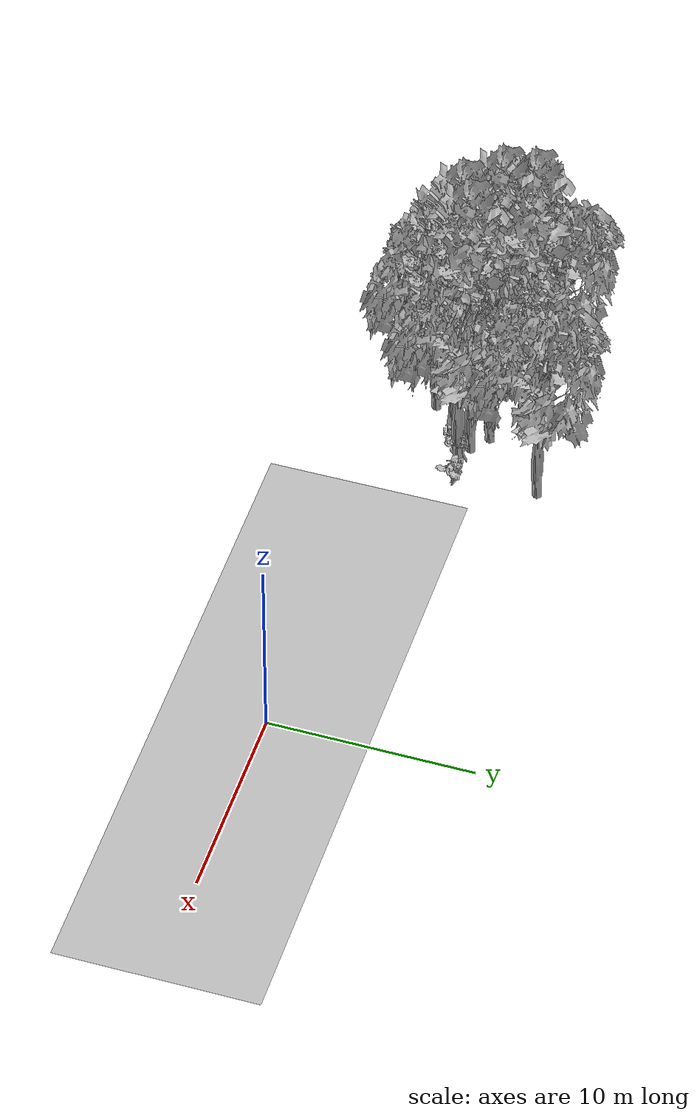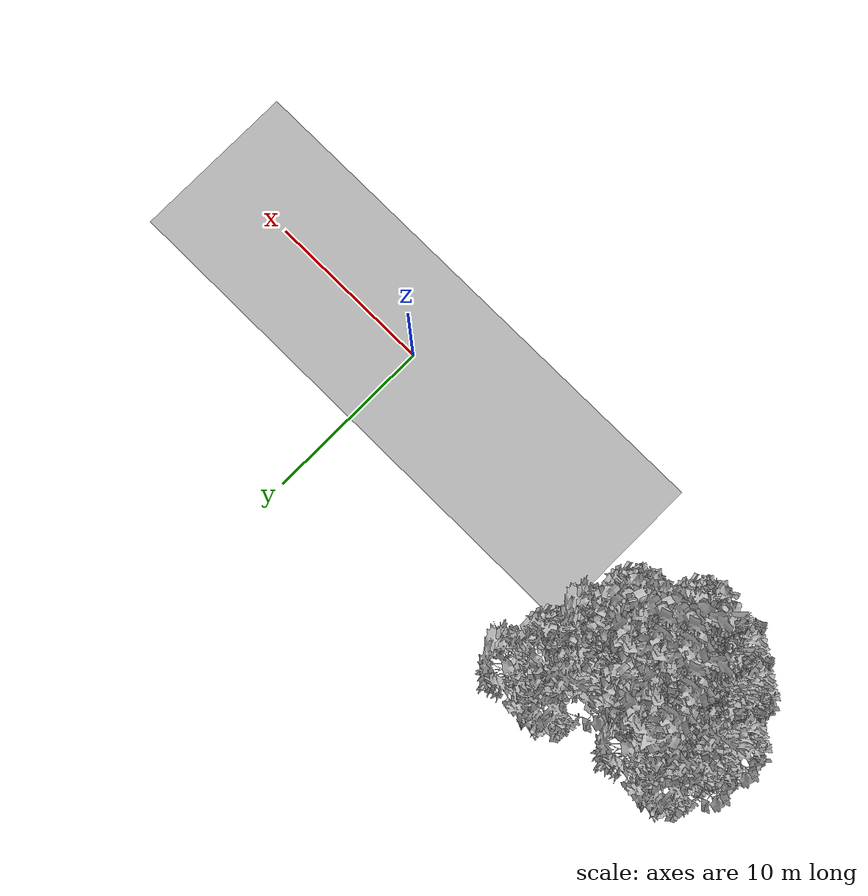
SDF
<sdf version="1.7">
 <world name="default">
  <model name="ground_plane">
   <static>1</static>
   <link name="link">
    <collision name="collision">
     <geometry><plane><normal>0 0 1</normal><size>100 100</size></plane></geometry>
     <surface><contact><ode><min_depth>0.01</min_depth><max_vel>0</max_vel></ode></contact></surface>
    </collision>
    <visual name="grass">
     <cast_shadows>0</cast_shadows>
     <geometry>
      <mesh>
       <scale>0.5814285714285714 0.18142857142857144 0.1</scale>
       <uri>file://grass_plane/meshes/grass_plane.dae</uri>
      </mesh>
     </geometry>
    </visual>
   </link>
  </model>
  <model name="Tree 11">
   <static>1</static>
   <pose>-23.143867781867687 2.5323528704578564 0 1.57079 -0 0</pose>
   <link name="link">
    <collision name="collision">
     <geometry><mesh><scale>3.5 5 3.5</scale><uri>model://tree_2/meshes/tree_2.obj</uri></mesh></geometry>
    </collision>
    <visual name="visual">
     <geometry><mesh><scale>3.5 5 3.5</scale><uri>model://tree_2/meshes/tree_2.obj</uri></mesh></geometry>
    </visual>
   </link>
  </model>
  <model name="Tree 22">
   <static>1</static>
   <pose>-21.677403938993216 1.5167767295512533 0 1.57079 -0 0</pose>
   <link name="link">
    <collision name="collision">
     <geometry><mesh><scale>3.5 5 3.5</scale><uri>model://tree_2/meshes/tree_2.obj</uri></mesh></geometry>
    </collision>
    <visual name="visual">
     <geometry><mesh><scale>3.5 5 3.5</scale><uri>model://tree_2/meshes/tree_2.obj</uri></mesh></geometry>
    </visual>
   </link>
  </model>
  <model name="Tree 31">
   <static>1</static>
   <pose>-19.441192703451993 3.903946145086696 0 1.57079 -0 0</pose>
   <link name="link">
    <collision name="collision">
     <geometry><mesh><scale>3.5 5 3.5</scale><uri>model://tree_2/meshes/tree_2.obj</uri></mesh></geometry>
    </collision>
    <visual name="visual">
     <geometry><mesh><scale>3.5 5 3.5</scale><uri>model://tree_2/meshes/tree_2.obj</uri></mesh></geometry>
    </visual>
   </link>
  </model>
  <model name="Tree 50">
   <static>1</static>
   <pose>-20.359017164193222 2.7420125081877593 0 1.57079 -0 0</pose>
   <link name="link">
    <collision name="collision">
     <geometry><mesh><scale>3.5 5 3.5</scale><uri>model://tree_9/meshes/tree_9.obj</uri></mesh></geometry>
    </collision>
    <visual name="visual">
     <geometry><mesh><scale>3.5 5 3.5</scale><uri>model://tree_9/meshes/tree_9.obj</uri></mesh></geometry>
    </visual>
   </link>
  </model>
  <model name="Tree 133">
   <static>1</static>
   <pose>-19.19876803121387 3.4088054483654453 0 1.57079 -0 0</pose>
   <link name="link">
    <collision name="collision">
     <geometry><mesh><scale>3.5 5 3.5</scale><uri>model://tree_9/meshes/tree_9.obj</uri></mesh></geometry>
    </collision>
    <visual name="visual">
     <geometry><mesh><scale>3.5 5 3.5</scale><uri>model://tree_9/meshes/tree_9.obj</uri></mesh></geometry>
    </visual>
   </link>
  </model>
  <model name="Tree 153">
   <static>1</static>
   <pose>-20.35604204701323 4.589729243141125 0 1.57079 -0 0</pose>
   <link name="link">
    <collision name="collision">
     <geometry><mesh><scale>3.5 5 3.5</scale><uri>model://tree_2/meshes/tree_2.obj</uri></mesh></geometry>
    </collision>
    <visual name="visual">
     <geometry><mesh><scale>3.5 5 3.5</scale><uri>model://tree_2/meshes/tree_2.obj</uri></mesh></geometry>
    </visual>
   </link>
  </model>
  <model name="Tree 199">
   <static>1</static>
   <pose>-21.796508486129312 4.2327386835791465 0 1.57079 -0 0</pose>
   <link name="link">
    <collision name="collision">
     <geometry><mesh><scale>3.5 5 3.5</scale><uri>model://tree_9/meshes/tree_9.obj</uri></mesh></geometry>
    </collision>
    <visual name="visual">
     <geometry><mesh><scale>3.5 5 3.5</scale><uri>model://tree_9/meshes/tree_9.obj</uri></mesh></geometry>
    </visual>
   </link>
  </model>
  <model name="Tree 209">
   <static>1</static>
   <pose>-23.15183934787266 2.826104786201295 0 1.57079 -0 0</pose>
   <link name="link">
    <collision name="collision">
     <geometry><mesh><scale>3.5 5 3.5</scale><uri>model://tree_2/meshes/tree_2.obj</uri></mesh></geometry>
    </collision>
    <visual name="visual">
     <geometry><mesh><scale>3.5 5 3.5</scale><uri>model://tree_2/meshes/tree_2.obj</uri></mesh></geometry>
    </visual>
   </link>
  </model>
  <model name="Tree 272">
   <static>1</static>
   <pose>-24.39757897156468 6.493852005556594 0 1.57079 -0 0</pose>
   <link name="link">
    <collision name="collision">
     <geometry><mesh><scale>3.5 5 3.5</scale><uri>model://tree_2/meshes/tree_2.obj</uri></mesh></geometry>
    </collision>
    <visual name="visual">
     <geometry><mesh><scale>3.5 5 3.5</scale><uri>model://tree_2/meshes/tree_2.obj</uri></mesh></geometry>
    </visual>
   </link>
  </model>
  <model name="Tree 330">
   <static>1</static>
   <pose>-24.59189864639109 4.6513547187015405 0 1.57079 -0 0</pose>
   <link name="link">
    <collision name="collision">
     <geometry><mesh><scale>3.5 5 3.5</scale><uri>model://tree_2/meshes/tree_2.obj</uri></mesh></geometry>
    </collision>
    <visual name="visual">
     <geometry><mesh><scale>3.5 5 3.5</scale><uri>model://tree_2/meshes/tree_2.obj</uri></mesh></geometry>
    </visual>
   </link>
  </model>
  <model name="Tree 334">
   <static>1</static>
   <pose>-22.058595639390873 5.734709715626458 0 1.57079 -0 0</pose>
   <link name="link">
    <collision name="collision">
     <geometry><mesh><scale>3.5 5 3.5</scale><uri>model://tree_9/meshes/tree_9.obj</uri></mesh></geometry>
    </collision>
    <visual name="visual">
     <geometry><mesh><scale>3.5 5 3.5</scale><uri>model://tree_9/meshes/tree_9.obj</uri></mesh></geometry>
    </visual>
   </link>
  </model>
  <model name="Tree 363">
   <static>1</static>
   <pose>-17.543964143845624 7.762184656726966 0 1.57079 -0 0</pose>
   <link name="link">
    <collision name="collision">
     <geometry><mesh><scale>3.5 5 3.5</scale><uri>model://tree_2/meshes/tree_2.obj</uri></mesh></geometry>
    </collision>
    <visual name="visual">
     <geometry><mesh><scale>3.5 5 3.5</scale><uri>model://tree_2/meshes/tree_2.obj</uri></mesh></geometry>
    </visual>
   </link>
  </model>
  <model name="Tree 413">
   <static>1</static>
   <pose>-18.908760765558768 3.4304814938210413 0 1.57079 -0 0</pose>
   <link name="link">
    <collision name="collision">
     <geometry><mesh><scale>3.5 5 3.5</scale><uri>model://tree_2/meshes/tree_2.obj</uri></mesh></geometry>
    </collision>
    <visual name="visual">
     <geometry><mesh><scale>3.5 5 3.5</scale><uri>model://tree_2/meshes/tree_2.obj</uri></mesh></geometry>
    </visual>
   </link>
  </model>
  <model name="Bush 72">
   <static>1</static>
   <pose>-19.31341089489915 3.3513658775937323 0 1.57079 -0 0</pose>
   <link name="link">
    <collision name="collision">
     <geometry><mesh><scale>2 2 2</scale><uri>model://bush_3/meshes/bush_3.obj</uri></mesh></geometry>
     <surface><contact><collide_without_contact>false</collide_without_contact></contact></surface>
    </collision>
    <visual name="visual">
     <geometry><mesh><scale>2 2 2</scale><uri>model://bush_3/meshes/bush_3.obj</uri></mesh></geometry>
    </visual>
   </link>
  </model>
  <model name="Bush 89">
   <static>1</static>
   <pose>-24.122885634694494 4.630963218050972 0 1.57079 -0 0</pose>
   <link name="link">
    <collision name="collision">
     <geometry><mesh><scale>2 2 2</scale><uri>model://bush_3/meshes/bush_3.obj</uri></mesh></geometry>
     <surface><contact><collide_without_contact>false</collide_without_contact></contact></surface>
    </collision>
    <visual name="visual">
     <geometry><mesh><scale>2 2 2</scale><uri>model://bush_3/meshes/bush_3.obj</uri></mesh></geometry>
    </visual>
   </link>
  </model>
  <model name="Bush 158">
   <static>1</static>
   <pose>-25.89422477255636 4.12827457994927 0 1.57079 -0 0</pose>
   <link name="link">
    <collision name="collision">
     <geometry><mesh><scale>2 2 2</scale><uri>model://bush_0/meshes/bush_0.obj</uri></mesh></geometry>
     <surface><contact><collide_without_contact>false</collide_without_contact></contact></surface>
    </collision>
    <visual name="visual">
     <geometry><mesh><scale>2 2 2</scale><uri>model://bush_0/meshes/bush_0.obj</uri></mesh></geometry>
    </visual>
   </link>
  </model>
  <model name="Bush 159">
   <static>1</static>
   <pose>-24.121304567428265 3.5671895957558135 0 1.57079 -0 0</pose>
   <link name="link">
    <collision name="collision">
     <geometry><mesh><scale>2 2 2</scale><uri>model://bush_2/meshes/bush_2.obj</uri></mesh></geometry>
     <surface><contact><collide_without_contact>false</collide_without_contact></contact></surface>
    </collision>
    <visual name="visual">
     <geometry><mesh><scale>2 2 2</scale><uri>model://bush_2/meshes/bush_2.obj</uri></mesh></geometry>
    </visual>
   </link>
  </model>
  <model name="Bush 200">
   <static>1</static>
   <pose>-23.288589493017767 1.7387443437743642 0 1.57079 -0 0</pose>
   <link name="link">
    <collision name="collision">
     <geometry><mesh><scale>2 2 2</scale><uri>model://bush_4/meshes/bush_4.obj</uri></mesh></geometry>
     <surface><contact><collide_without_contact>false</collide_without_contact></contact></surface>
    </collision>
    <visual name="visual">
     <geometry><mesh><scale>2 2 2</scale><uri>model://bush_4/meshes/bush_4.obj</uri></mesh></geometry>
    </visual>
   </link>
  </model>
  <model name="Bush 207">
   <static>1</static>
   <pose>-25.770423961808824 2.667753352840716 0 1.57079 -0 0</pose>
   <link name="link">
    <collision name="collision">
     <geometry><mesh><scale>2 2 2</scale><uri>model://bush_4/meshes/bush_4.obj</uri></mesh></geometry>
     <surface><contact><collide_without_contact>false</collide_without_contact></contact></surface>
    </collision>
    <visual name="visual">
     <geometry><mesh><scale>2 2 2</scale><uri>model://bush_4/meshes/bush_4.obj</uri></mesh></geometry>
    </visual>
   </link>
  </model>
  <model name="Bush 209">
   <static>1</static>
   <pose>-27.489501714426282 5.3125543592063025 0 1.57079 -0 0</pose>
   <link name="link">
    <collision name="collision">
     <geometry><mesh><scale>2 2 2</scale><uri>model://bush_2/meshes/bush_2.obj</uri></mesh></geometry>
     <surface><contact><collide_without_contact>false</collide_without_contact></contact></surface>
    </collision>
    <visual name="visual">
     <geometry><mesh><scale>2 2 2</scale><uri>model://bush_2/meshes/bush_2.obj</uri></mesh></geometry>
    </visual>
   </link>
  </model>
  <model name="Bush 221">
   <static>1</static>
   <pose>-16.954677167386325 3.753412218447629 0 1.57079 -0 0</pose>
   <link name="link">
    <collision name="collision">
     <geometry><mesh><scale>2 2 2</scale><uri>model://bush_0/meshes/bush_0.obj</uri></mesh></geometry>
     <surface><contact><collide_without_contact>false</collide_without_contact></contact></surface>
    </collision>
    <visual name="visual">
     <geometry><mesh><scale>2 2 2</scale><uri>model://bush_0/meshes/bush_0.obj</uri></mesh></geometry>
    </visual>
   </link>
  </model>
  <model name="Bush 294">
   <static>1</static>
   <pose>-19.109698062089915 3.4510165000051423 0 1.57079 -0 0</pose>
   <link name="link">
    <collision name="collision">
     <geometry><mesh><scale>2 2 2</scale><uri>model://bush_5/meshes/bush_5.obj</uri></mesh></geometry>
     <surface><contact><collide_without_contact>false</collide_without_contact></contact></surface>
    </collision>
    <visual name="visual">
     <geometry><mesh><scale>2 2 2</scale><uri>model://bush_5/meshes/bush_5.obj</uri></mesh></geometry>
    </visual>
   </link>
  </model>
 </world>
</sdf>
